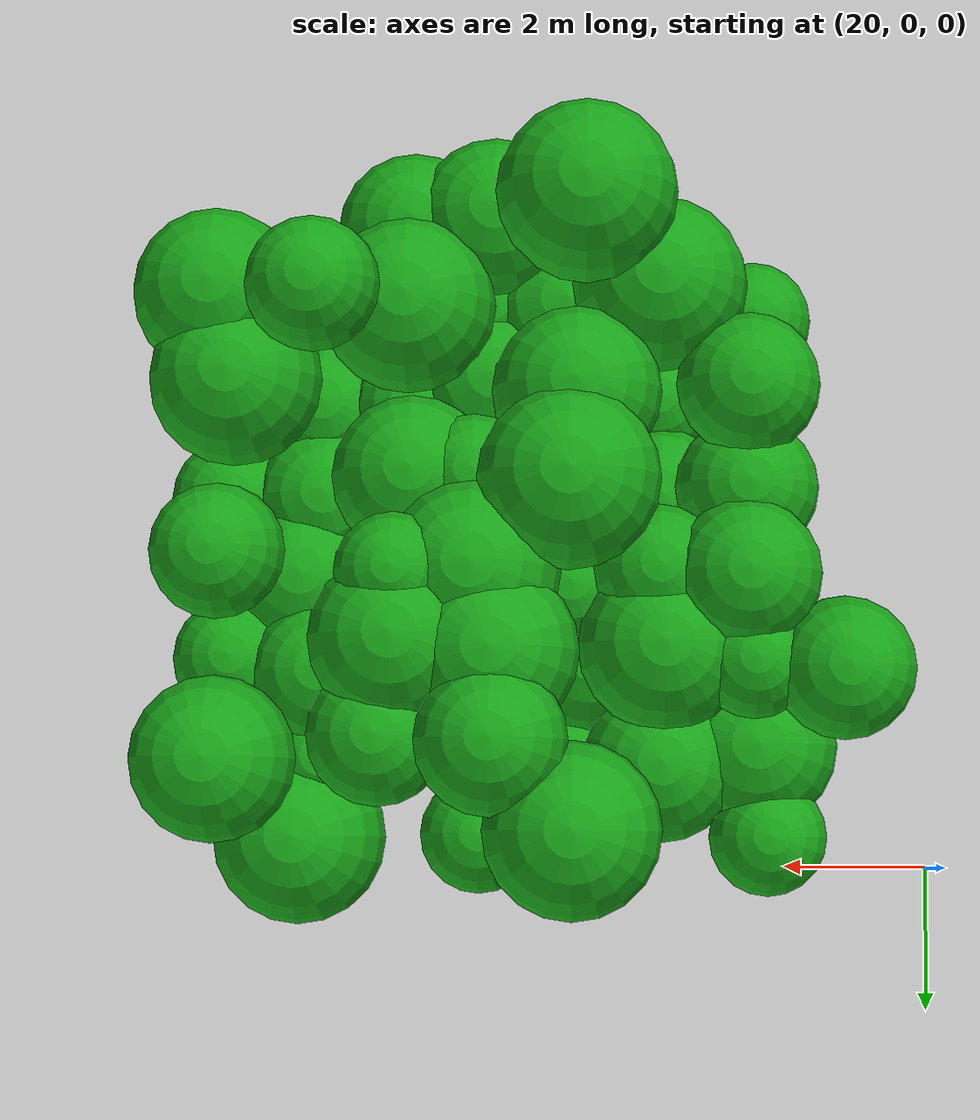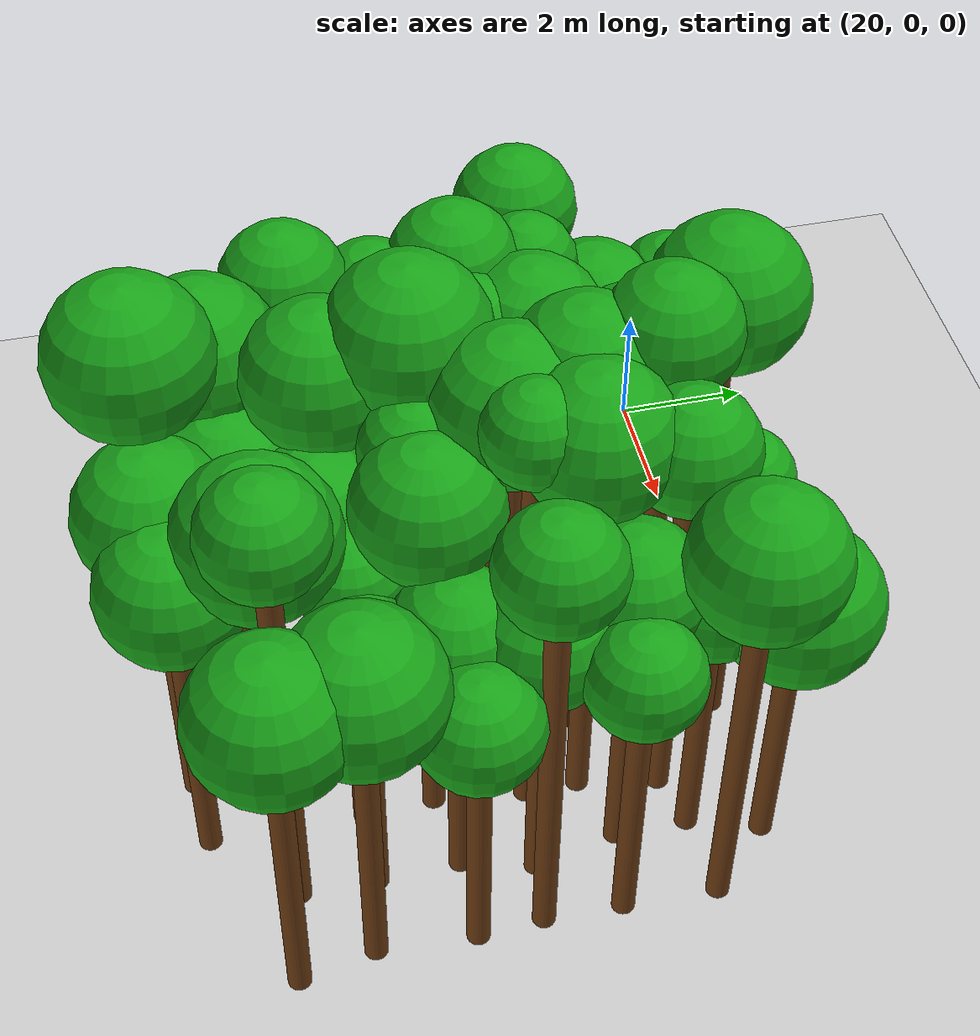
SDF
<sdf version="1.6">
 <world name="forest_world">
  <include><uri>model://sun</uri></include>
  <include><uri>model://ground_plane</uri></include>
  <model name="tree_2587_trunk">
   <static>true</static>
   <pose>21.79 -2.41 2.79 0 0 0</pose>
   <link name="link">
    <collision name="collision">
     <geometry><cylinder><radius>0.16</radius><length>5.58</length></cylinder></geometry>
    </collision>
    <visual name="visual">
     <geometry><cylinder><radius>0.16</radius><length>5.58</length></cylinder></geometry>
     <material><ambient>0.35 0.20 0.05 1</ambient><diffuse>0.45 0.25 0.08 1</diffuse></material>
    </visual>
   </link>
  </model>
  <model name="tree_2587_leaf">
   <static>true</static>
   <pose>21.79 -2.41 6.10 0 0 0</pose>
   <link name="link">
    <collision name="collision"><geometry><sphere><radius>0.87</radius></sphere></geometry></collision>
    <visual name="visual">
     <geometry><sphere><radius>0.87</radius></sphere></geometry>
     <material><ambient>0.05 0.45 0.05 1</ambient><diffuse>0.10 0.65 0.10 1</diffuse></material>
    </visual>
   </link>
  </model>
  <model name="tree_2638_trunk">
   <static>true</static>
   <pose>22.83 -6.87 2.23 0 0 0</pose>
   <link name="link">
    <collision name="collision">
     <geometry><cylinder><radius>0.16</radius><length>4.46</length></cylinder></geometry>
    </collision>
    <visual name="visual">
     <geometry><cylinder><radius>0.16</radius><length>4.46</length></cylinder></geometry>
     <material><ambient>0.35 0.20 0.05 1</ambient><diffuse>0.45 0.25 0.08 1</diffuse></material>
    </visual>
   </link>
  </model>
  <model name="tree_2638_leaf">
   <static>true</static>
   <pose>22.83 -6.87 4.90 0 0 0</pose>
   <link name="link">
    <collision name="collision"><geometry><sphere><radius>0.74</radius></sphere></geometry></collision>
    <visual name="visual">
     <geometry><sphere><radius>0.74</radius></sphere></geometry>
     <material><ambient>0.05 0.45 0.05 1</ambient><diffuse>0.10 0.65 0.10 1</diffuse></material>
    </visual>
   </link>
  </model>
  <model name="tree_2639_trunk">
   <static>true</static>
   <pose>22.97 -5.81 2.90 0 0 0</pose>
   <link name="link">
    <collision name="collision">
     <geometry><cylinder><radius>0.16</radius><length>5.80</length></cylinder></geometry>
    </collision>
    <visual name="visual">
     <geometry><cylinder><radius>0.16</radius><length>5.80</length></cylinder></geometry>
     <material><ambient>0.35 0.20 0.05 1</ambient><diffuse>0.45 0.25 0.08 1</diffuse></material>
    </visual>
   </link>
  </model>
  <model name="tree_2639_leaf">
   <static>true</static>
   <pose>22.97 -5.81 6.32 0 0 0</pose>
   <link name="link">
    <collision name="collision"><geometry><sphere><radius>0.87</radius></sphere></geometry></collision>
    <visual name="visual">
     <geometry><sphere><radius>0.87</radius></sphere></geometry>
     <material><ambient>0.05 0.45 0.05 1</ambient><diffuse>0.10 0.65 0.10 1</diffuse></material>
    </visual>
   </link>
  </model>
  <model name="tree_2640_trunk">
   <static>true</static>
   <pose>22.95 -4.63 2.63 0 0 0</pose>
   <link name="link">
    <collision name="collision">
     <geometry><cylinder><radius>0.16</radius><length>5.26</length></cylinder></geometry>
    </collision>
    <visual name="visual">
     <geometry><cylinder><radius>0.16</radius><length>5.26</length></cylinder></geometry>
     <material><ambient>0.35 0.20 0.05 1</ambient><diffuse>0.45 0.25 0.08 1</diffuse></material>
    </visual>
   </link>
  </model>
  <model name="tree_2640_leaf">
   <static>true</static>
   <pose>22.95 -4.63 5.78 0 0 0</pose>
   <link name="link">
    <collision name="collision"><geometry><sphere><radius>0.88</radius></sphere></geometry></collision>
    <visual name="visual">
     <geometry><sphere><radius>0.88</radius></sphere></geometry>
     <material><ambient>0.05 0.45 0.05 1</ambient><diffuse>0.10 0.65 0.10 1</diffuse></material>
    </visual>
   </link>
  </model>
  <model name="tree_2641_trunk">
   <static>true</static>
   <pose>22.98 -3.53 2.85 0 0 0</pose>
   <link name="link">
    <collision name="collision">
     <geometry><cylinder><radius>0.16</radius><length>5.70</length></cylinder></geometry>
    </collision>
    <visual name="visual">
     <geometry><cylinder><radius>0.16</radius><length>5.70</length></cylinder></geometry>
     <material><ambient>0.35 0.20 0.05 1</ambient><diffuse>0.45 0.25 0.08 1</diffuse></material>
    </visual>
   </link>
  </model>
  <model name="tree_2641_leaf">
   <static>true</static>
   <pose>22.98 -3.53 6.25 0 0 0</pose>
   <link name="link">
    <collision name="collision"><geometry><sphere><radius>0.91</radius></sphere></geometry></collision>
    <visual name="visual">
     <geometry><sphere><radius>0.91</radius></sphere></geometry>
     <material><ambient>0.05 0.45 0.05 1</ambient><diffuse>0.10 0.65 0.10 1</diffuse></material>
    </visual>
   </link>
  </model>
  <model name="tree_2642_trunk">
   <static>true</static>
   <pose>22.87 -2.51 2.78 0 0 0</pose>
   <link name="link">
    <collision name="collision">
     <geometry><cylinder><radius>0.16</radius><length>5.56</length></cylinder></geometry>
    </collision>
    <visual name="visual">
     <geometry><cylinder><radius>0.16</radius><length>5.56</length></cylinder></geometry>
     <material><ambient>0.35 0.20 0.05 1</ambient><diffuse>0.45 0.25 0.08 1</diffuse></material>
    </visual>
   </link>
  </model>
  <model name="tree_2642_leaf">
   <static>true</static>
   <pose>22.87 -2.51 6.00 0 0 0</pose>
   <link name="link">
    <collision name="collision"><geometry><sphere><radius>0.72</radius></sphere></geometry></collision>
    <visual name="visual">
     <geometry><sphere><radius>0.72</radius></sphere></geometry>
     <material><ambient>0.05 0.45 0.05 1</ambient><diffuse>0.10 0.65 0.10 1</diffuse></material>
    </visual>
   </link>
  </model>
  <model name="tree_2643_trunk">
   <static>true</static>
   <pose>22.81 -1.51 2.13 0 0 0</pose>
   <link name="link">
    <collision name="collision">
     <geometry><cylinder><radius>0.16</radius><length>4.26</length></cylinder></geometry>
    </collision>
    <visual name="visual">
     <geometry><cylinder><radius>0.16</radius><length>4.26</length></cylinder></geometry>
     <material><ambient>0.35 0.20 0.05 1</ambient><diffuse>0.45 0.25 0.08 1</diffuse></material>
    </visual>
   </link>
  </model>
  <model name="tree_2643_leaf">
   <static>true</static>
   <pose>22.81 -1.51 4.89 0 0 0</pose>
   <link name="link">
    <collision name="collision"><geometry><sphere><radius>1.05</radius></sphere></geometry></collision>
    <visual name="visual">
     <geometry><sphere><radius>1.05</radius></sphere></geometry>
     <material><ambient>0.05 0.45 0.05 1</ambient><diffuse>0.10 0.65 0.10 1</diffuse></material>
    </visual>
   </link>
  </model>
  <model name="tree_2644_trunk">
   <static>true</static>
   <pose>22.64 -0.38 2.32 0 0 0</pose>
   <link name="link">
    <collision name="collision">
     <geometry><cylinder><radius>0.16</radius><length>4.64</length></cylinder></geometry>
    </collision>
    <visual name="visual">
     <geometry><cylinder><radius>0.16</radius><length>4.64</length></cylinder></geometry>
     <material><ambient>0.35 0.20 0.05 1</ambient><diffuse>0.45 0.25 0.08 1</diffuse></material>
    </visual>
   </link>
  </model>
  <model name="tree_2644_leaf">
   <static>true</static>
   <pose>22.64 -0.38 5.08 0 0 0</pose>
   <link name="link">
    <collision name="collision"><geometry><sphere><radius>0.73</radius></sphere></geometry></collision>
    <visual name="visual">
     <geometry><sphere><radius>0.73</radius></sphere></geometry>
     <material><ambient>0.05 0.45 0.05 1</ambient><diffuse>0.10 0.65 0.10 1</diffuse></material>
    </visual>
   </link>
  </model>
  <model name="tree_2693_trunk">
   <static>true</static>
   <pose>24.04 -7.03 2.83 0 0 0</pose>
   <link name="link">
    <collision name="collision">
     <geometry><cylinder><radius>0.16</radius><length>5.66</length></cylinder></geometry>
    </collision>
    <visual name="visual">
     <geometry><cylinder><radius>0.16</radius><length>5.66</length></cylinder></geometry>
     <material><ambient>0.35 0.20 0.05 1</ambient><diffuse>0.45 0.25 0.08 1</diffuse></material>
    </visual>
   </link>
  </model>
  <model name="tree_2693_leaf">
   <static>true</static>
   <pose>24.04 -7.03 6.29 0 0 0</pose>
   <link name="link">
    <collision name="collision"><geometry><sphere><radius>1.06</radius></sphere></geometry></collision>
    <visual name="visual">
     <geometry><sphere><radius>1.06</radius></sphere></geometry>
     <material><ambient>0.05 0.45 0.05 1</ambient><diffuse>0.10 0.65 0.10 1</diffuse></material>
    </visual>
   </link>
  </model>
  <model name="tree_2694_trunk">
   <static>true</static>
   <pose>24.00 -5.86 2.07 0 0 0</pose>
   <link name="link">
    <collision name="collision">
     <geometry><cylinder><radius>0.16</radius><length>4.14</length></cylinder></geometry>
    </collision>
    <visual name="visual">
     <geometry><cylinder><radius>0.16</radius><length>4.14</length></cylinder></geometry>
     <material><ambient>0.35 0.20 0.05 1</ambient><diffuse>0.45 0.25 0.08 1</diffuse></material>
    </visual>
   </link>
  </model>
  <model name="tree_2694_leaf">
   <static>true</static>
   <pose>24.00 -5.86 4.59 0 0 0</pose>
   <link name="link">
    <collision name="collision"><geometry><sphere><radius>0.75</radius></sphere></geometry></collision>
    <visual name="visual">
     <geometry><sphere><radius>0.75</radius></sphere></geometry>
     <material><ambient>0.05 0.45 0.05 1</ambient><diffuse>0.10 0.65 0.10 1</diffuse></material>
    </visual>
   </link>
  </model>
  <model name="tree_2695_trunk">
   <static>true</static>
   <pose>23.97 -4.56 2.12 0 0 0</pose>
   <link name="link">
    <collision name="collision">
     <geometry><cylinder><radius>0.16</radius><length>4.24</length></cylinder></geometry>
    </collision>
    <visual name="visual">
     <geometry><cylinder><radius>0.16</radius><length>4.24</length></cylinder></geometry>
     <material><ambient>0.35 0.20 0.05 1</ambient><diffuse>0.45 0.25 0.08 1</diffuse></material>
    </visual>
   </link>
  </model>
  <model name="tree_2695_leaf">
   <static>true</static>
   <pose>23.97 -4.56 4.81 0 0 0</pose>
   <link name="link">
    <collision name="collision"><geometry><sphere><radius>0.95</radius></sphere></geometry></collision>
    <visual name="visual">
     <geometry><sphere><radius>0.95</radius></sphere></geometry>
     <material><ambient>0.05 0.45 0.05 1</ambient><diffuse>0.10 0.65 0.10 1</diffuse></material>
    </visual>
   </link>
  </model>
  <model name="tree_2696_trunk">
   <static>true</static>
   <pose>24.03 -3.60 2.77 0 0 0</pose>
   <link name="link">
    <collision name="collision">
     <geometry><cylinder><radius>0.16</radius><length>5.54</length></cylinder></geometry>
    </collision>
    <visual name="visual">
     <geometry><cylinder><radius>0.16</radius><length>5.54</length></cylinder></geometry>
     <material><ambient>0.35 0.20 0.05 1</ambient><diffuse>0.45 0.25 0.08 1</diffuse></material>
    </visual>
   </link>
  </model>
  <model name="tree_2696_leaf">
   <static>true</static>
   <pose>24.03 -3.60 6.02 0 0 0</pose>
   <link name="link">
    <collision name="collision"><geometry><sphere><radius>0.79</radius></sphere></geometry></collision>
    <visual name="visual">
     <geometry><sphere><radius>0.79</radius></sphere></geometry>
     <material><ambient>0.05 0.45 0.05 1</ambient><diffuse>0.10 0.65 0.10 1</diffuse></material>
    </visual>
   </link>
  </model>
  <model name="tree_2697_trunk">
   <static>true</static>
   <pose>23.96 -2.68 2.59 0 0 0</pose>
   <link name="link">
    <collision name="collision">
     <geometry><cylinder><radius>0.16</radius><length>5.17</length></cylinder></geometry>
    </collision>
    <visual name="visual">
     <geometry><cylinder><radius>0.16</radius><length>5.17</length></cylinder></geometry>
     <material><ambient>0.35 0.20 0.05 1</ambient><diffuse>0.45 0.25 0.08 1</diffuse></material>
    </visual>
   </link>
  </model>
  <model name="tree_2697_leaf">
   <static>true</static>
   <pose>23.96 -2.68 5.80 0 0 0</pose>
   <link name="link">
    <collision name="collision"><geometry><sphere><radius>1.05</radius></sphere></geometry></collision>
    <visual name="visual">
     <geometry><sphere><radius>1.05</radius></sphere></geometry>
     <material><ambient>0.05 0.45 0.05 1</ambient><diffuse>0.10 0.65 0.10 1</diffuse></material>
    </visual>
   </link>
  </model>
  <model name="tree_2698_trunk">
   <static>true</static>
   <pose>23.97 -1.28 2.26 0 0 0</pose>
   <link name="link">
    <collision name="collision">
     <geometry><cylinder><radius>0.16</radius><length>4.53</length></cylinder></geometry>
    </collision>
    <visual name="visual">
     <geometry><cylinder><radius>0.16</radius><length>4.53</length></cylinder></geometry>
     <material><ambient>0.35 0.20 0.05 1</ambient><diffuse>0.45 0.25 0.08 1</diffuse></material>
    </visual>
   </link>
  </model>
  <model name="tree_2698_leaf">
   <static>true</static>
   <pose>23.97 -1.28 5.11 0 0 0</pose>
   <link name="link">
    <collision name="collision"><geometry><sphere><radius>0.98</radius></sphere></geometry></collision>
    <visual name="visual">
     <geometry><sphere><radius>0.98</radius></sphere></geometry>
     <material><ambient>0.05 0.45 0.05 1</ambient><diffuse>0.10 0.65 0.10 1</diffuse></material>
    </visual>
   </link>
  </model>
  <model name="tree_2747_trunk">
   <static>true</static>
   <pose>24.94 -7.94 3.28 0 0 0</pose>
   <link name="link">
    <collision name="collision">
     <geometry><cylinder><radius>0.16</radius><length>6.57</length></cylinder></geometry>
    </collision>
    <visual name="visual">
     <geometry><cylinder><radius>0.16</radius><length>6.57</length></cylinder></geometry>
     <material><ambient>0.35 0.20 0.05 1</ambient><diffuse>0.45 0.25 0.08 1</diffuse></material>
    </visual>
   </link>
  </model>
  <model name="tree_2747_leaf">
   <static>true</static>
   <pose>24.94 -7.94 7.22 0 0 0</pose>
   <link name="link">
    <collision name="collision"><geometry><sphere><radius>1.08</radius></sphere></geometry></collision>
    <visual name="visual">
     <geometry><sphere><radius>1.08</radius></sphere></geometry>
     <material><ambient>0.05 0.45 0.05 1</ambient><diffuse>0.10 0.65 0.10 1</diffuse></material>
    </visual>
   </link>
  </model>
  <model name="tree_2748_trunk">
   <static>true</static>
   <pose>25.14 -6.91 2.21 0 0 0</pose>
   <link name="link">
    <collision name="collision">
     <geometry><cylinder><radius>0.16</radius><length>4.41</length></cylinder></geometry>
    </collision>
    <visual name="visual">
     <geometry><cylinder><radius>0.16</radius><length>4.41</length></cylinder></geometry>
     <material><ambient>0.35 0.20 0.05 1</ambient><diffuse>0.45 0.25 0.08 1</diffuse></material>
    </visual>
   </link>
  </model>
  <model name="tree_2748_leaf">
   <static>true</static>
   <pose>25.14 -6.91 5.07 0 0 0</pose>
   <link name="link">
    <collision name="collision"><geometry><sphere><radius>1.10</radius></sphere></geometry></collision>
    <visual name="visual">
     <geometry><sphere><radius>1.10</radius></sphere></geometry>
     <material><ambient>0.05 0.45 0.05 1</ambient><diffuse>0.10 0.65 0.10 1</diffuse></material>
    </visual>
   </link>
  </model>
  <model name="tree_2749_trunk">
   <static>true</static>
   <pose>25.04 -5.67 2.97 0 0 0</pose>
   <link name="link">
    <collision name="collision">
     <geometry><cylinder><radius>0.16</radius><length>5.95</length></cylinder></geometry>
    </collision>
    <visual name="visual">
     <geometry><cylinder><radius>0.16</radius><length>5.95</length></cylinder></geometry>
     <material><ambient>0.35 0.20 0.05 1</ambient><diffuse>0.45 0.25 0.08 1</diffuse></material>
    </visual>
   </link>
  </model>
  <model name="tree_2749_leaf">
   <static>true</static>
   <pose>25.04 -5.67 6.56 0 0 0</pose>
   <link name="link">
    <collision name="collision"><geometry><sphere><radius>1.02</radius></sphere></geometry></collision>
    <visual name="visual">
     <geometry><sphere><radius>1.02</radius></sphere></geometry>
     <material><ambient>0.05 0.45 0.05 1</ambient><diffuse>0.10 0.65 0.10 1</diffuse></material>
    </visual>
   </link>
  </model>
  <model name="tree_2750_trunk">
   <static>true</static>
   <pose>25.13 -4.55 3.21 0 0 0</pose>
   <link name="link">
    <collision name="collision">
     <geometry><cylinder><radius>0.16</radius><length>6.43</length></cylinder></geometry>
    </collision>
    <visual name="visual">
     <geometry><cylinder><radius>0.16</radius><length>6.43</length></cylinder></geometry>
     <material><ambient>0.35 0.20 0.05 1</ambient><diffuse>0.45 0.25 0.08 1</diffuse></material>
    </visual>
   </link>
  </model>
  <model name="tree_2750_leaf">
   <static>true</static>
   <pose>25.13 -4.55 7.08 0 0 0</pose>
   <link name="link">
    <collision name="collision"><geometry><sphere><radius>1.09</radius></sphere></geometry></collision>
    <visual name="visual">
     <geometry><sphere><radius>1.09</radius></sphere></geometry>
     <material><ambient>0.05 0.45 0.05 1</ambient><diffuse>0.10 0.65 0.10 1</diffuse></material>
    </visual>
   </link>
  </model>
  <model name="tree_2751_trunk">
   <static>true</static>
   <pose>25.08 -3.46 2.37 0 0 0</pose>
   <link name="link">
    <collision name="collision">
     <geometry><cylinder><radius>0.16</radius><length>4.75</length></cylinder></geometry>
    </collision>
    <visual name="visual">
     <geometry><cylinder><radius>0.16</radius><length>4.75</length></cylinder></geometry>
     <material><ambient>0.35 0.20 0.05 1</ambient><diffuse>0.45 0.25 0.08 1</diffuse></material>
    </visual>
   </link>
  </model>
  <model name="tree_2751_leaf">
   <static>true</static>
   <pose>25.08 -3.46 5.22 0 0 0</pose>
   <link name="link">
    <collision name="collision"><geometry><sphere><radius>0.79</radius></sphere></geometry></collision>
    <visual name="visual">
     <geometry><sphere><radius>0.79</radius></sphere></geometry>
     <material><ambient>0.05 0.45 0.05 1</ambient><diffuse>0.10 0.65 0.10 1</diffuse></material>
    </visual>
   </link>
  </model>
  <model name="tree_2752_trunk">
   <static>true</static>
   <pose>24.85 -2.58 2.07 0 0 0</pose>
   <link name="link">
    <collision name="collision">
     <geometry><cylinder><radius>0.16</radius><length>4.14</length></cylinder></geometry>
    </collision>
    <visual name="visual">
     <geometry><cylinder><radius>0.16</radius><length>4.14</length></cylinder></geometry>
     <material><ambient>0.35 0.20 0.05 1</ambient><diffuse>0.45 0.25 0.08 1</diffuse></material>
    </visual>
   </link>
  </model>
  <model name="tree_2752_leaf">
   <static>true</static>
   <pose>24.85 -2.58 4.74 0 0 0</pose>
   <link name="link">
    <collision name="collision"><geometry><sphere><radius>1.00</radius></sphere></geometry></collision>
    <visual name="visual">
     <geometry><sphere><radius>1.00</radius></sphere></geometry>
     <material><ambient>0.05 0.45 0.05 1</ambient><diffuse>0.10 0.65 0.10 1</diffuse></material>
    </visual>
   </link>
  </model>
  <model name="tree_2753_trunk">
   <static>true</static>
   <pose>25.11 -1.25 2.10 0 0 0</pose>
   <link name="link">
    <collision name="collision">
     <geometry><cylinder><radius>0.16</radius><length>4.20</length></cylinder></geometry>
    </collision>
    <visual name="visual">
     <geometry><cylinder><radius>0.16</radius><length>4.20</length></cylinder></geometry>
     <material><ambient>0.35 0.20 0.05 1</ambient><diffuse>0.45 0.25 0.08 1</diffuse></material>
    </visual>
   </link>
  </model>
  <model name="tree_2753_leaf">
   <static>true</static>
   <pose>25.11 -1.25 4.64 0 0 0</pose>
   <link name="link">
    <collision name="collision"><geometry><sphere><radius>0.73</radius></sphere></geometry></collision>
    <visual name="visual">
     <geometry><sphere><radius>0.73</radius></sphere></geometry>
     <material><ambient>0.05 0.45 0.05 1</ambient><diffuse>0.10 0.65 0.10 1</diffuse></material>
    </visual>
   </link>
  </model>
  <model name="tree_2754_trunk">
   <static>true</static>
   <pose>25.07 -0.42 3.15 0 0 0</pose>
   <link name="link">
    <collision name="collision">
     <geometry><cylinder><radius>0.16</radius><length>6.29</length></cylinder></geometry>
    </collision>
    <visual name="visual">
     <geometry><cylinder><radius>0.16</radius><length>6.29</length></cylinder></geometry>
     <material><ambient>0.35 0.20 0.05 1</ambient><diffuse>0.45 0.25 0.08 1</diffuse></material>
    </visual>
   </link>
  </model>
  <model name="tree_2754_leaf">
   <static>true</static>
   <pose>25.07 -0.42 6.93 0 0 0</pose>
   <link name="link">
    <collision name="collision"><geometry><sphere><radius>1.06</radius></sphere></geometry></collision>
    <visual name="visual">
     <geometry><sphere><radius>1.06</radius></sphere></geometry>
     <material><ambient>0.05 0.45 0.05 1</ambient><diffuse>0.10 0.65 0.10 1</diffuse></material>
    </visual>
   </link>
  </model>
  <model name="tree_2802_trunk">
   <static>true</static>
   <pose>26.04 -7.96 2.49 0 0 0</pose>
   <link name="link">
    <collision name="collision">
     <geometry><cylinder><radius>0.16</radius><length>4.99</length></cylinder></geometry>
    </collision>
    <visual name="visual">
     <geometry><cylinder><radius>0.16</radius><length>4.99</length></cylinder></geometry>
     <material><ambient>0.35 0.20 0.05 1</ambient><diffuse>0.45 0.25 0.08 1</diffuse></material>
    </visual>
   </link>
  </model>
  <model name="tree_2802_leaf">
   <static>true</static>
   <pose>26.04 -7.96 5.60 0 0 0</pose>
   <link name="link">
    <collision name="collision"><geometry><sphere><radius>1.02</radius></sphere></geometry></collision>
    <visual name="visual">
     <geometry><sphere><radius>1.02</radius></sphere></geometry>
     <material><ambient>0.05 0.45 0.05 1</ambient><diffuse>0.10 0.65 0.10 1</diffuse></material>
    </visual>
   </link>
  </model>
  <model name="tree_2803_trunk">
   <static>true</static>
   <pose>26.14 -6.94 2.18 0 0 0</pose>
   <link name="link">
    <collision name="collision">
     <geometry><cylinder><radius>0.16</radius><length>4.36</length></cylinder></geometry>
    </collision>
    <visual name="visual">
     <geometry><cylinder><radius>0.16</radius><length>4.36</length></cylinder></geometry>
     <material><ambient>0.35 0.20 0.05 1</ambient><diffuse>0.45 0.25 0.08 1</diffuse></material>
    </visual>
   </link>
  </model>
  <model name="tree_2803_leaf">
   <static>true</static>
   <pose>26.14 -6.94 4.93 0 0 0</pose>
   <link name="link">
    <collision name="collision"><geometry><sphere><radius>0.96</radius></sphere></geometry></collision>
    <visual name="visual">
     <geometry><sphere><radius>0.96</radius></sphere></geometry>
     <material><ambient>0.05 0.45 0.05 1</ambient><diffuse>0.10 0.65 0.10 1</diffuse></material>
    </visual>
   </link>
  </model>
  <model name="tree_2804_trunk">
   <static>true</static>
   <pose>26.07 -5.97 2.29 0 0 0</pose>
   <link name="link">
    <collision name="collision">
     <geometry><cylinder><radius>0.16</radius><length>4.57</length></cylinder></geometry>
    </collision>
    <visual name="visual">
     <geometry><cylinder><radius>0.16</radius><length>4.57</length></cylinder></geometry>
     <material><ambient>0.35 0.20 0.05 1</ambient><diffuse>0.45 0.25 0.08 1</diffuse></material>
    </visual>
   </link>
  </model>
  <model name="tree_2804_leaf">
   <static>true</static>
   <pose>26.07 -5.97 5.16 0 0 0</pose>
   <link name="link">
    <collision name="collision"><geometry><sphere><radius>0.98</radius></sphere></geometry></collision>
    <visual name="visual">
     <geometry><sphere><radius>0.98</radius></sphere></geometry>
     <material><ambient>0.05 0.45 0.05 1</ambient><diffuse>0.10 0.65 0.10 1</diffuse></material>
    </visual>
   </link>
  </model>
  <model name="tree_2805_trunk">
   <static>true</static>
   <pose>26.27 -4.69 2.89 0 0 0</pose>
   <link name="link">
    <collision name="collision">
     <geometry><cylinder><radius>0.16</radius><length>5.79</length></cylinder></geometry>
    </collision>
    <visual name="visual">
     <geometry><cylinder><radius>0.16</radius><length>5.79</length></cylinder></geometry>
     <material><ambient>0.35 0.20 0.05 1</ambient><diffuse>0.45 0.25 0.08 1</diffuse></material>
    </visual>
   </link>
  </model>
  <model name="tree_2805_leaf">
   <static>true</static>
   <pose>26.27 -4.69 6.23 0 0 0</pose>
   <link name="link">
    <collision name="collision"><geometry><sphere><radius>0.75</radius></sphere></geometry></collision>
    <visual name="visual">
     <geometry><sphere><radius>0.75</radius></sphere></geometry>
     <material><ambient>0.05 0.45 0.05 1</ambient><diffuse>0.10 0.65 0.10 1</diffuse></material>
    </visual>
   </link>
  </model>
  <model name="tree_2806_trunk">
   <static>true</static>
   <pose>26.27 -3.50 3.06 0 0 0</pose>
   <link name="link">
    <collision name="collision">
     <geometry><cylinder><radius>0.16</radius><length>6.12</length></cylinder></geometry>
    </collision>
    <visual name="visual">
     <geometry><cylinder><radius>0.16</radius><length>6.12</length></cylinder></geometry>
     <material><ambient>0.35 0.20 0.05 1</ambient><diffuse>0.45 0.25 0.08 1</diffuse></material>
    </visual>
   </link>
  </model>
  <model name="tree_2806_leaf">
   <static>true</static>
   <pose>26.27 -3.50 6.75 0 0 0</pose>
   <link name="link">
    <collision name="collision"><geometry><sphere><radius>1.06</radius></sphere></geometry></collision>
    <visual name="visual">
     <geometry><sphere><radius>1.06</radius></sphere></geometry>
     <material><ambient>0.05 0.45 0.05 1</ambient><diffuse>0.10 0.65 0.10 1</diffuse></material>
    </visual>
   </link>
  </model>
  <model name="tree_2807_trunk">
   <static>true</static>
   <pose>26.04 -2.52 3.13 0 0 0</pose>
   <link name="link">
    <collision name="collision">
     <geometry><cylinder><radius>0.16</radius><length>6.25</length></cylinder></geometry>
    </collision>
    <visual name="visual">
     <geometry><cylinder><radius>0.16</radius><length>6.25</length></cylinder></geometry>
     <material><ambient>0.35 0.20 0.05 1</ambient><diffuse>0.45 0.25 0.08 1</diffuse></material>
    </visual>
   </link>
  </model>
  <model name="tree_2807_leaf">
   <static>true</static>
   <pose>26.04 -2.52 6.88 0 0 0</pose>
   <link name="link">
    <collision name="collision"><geometry><sphere><radius>1.05</radius></sphere></geometry></collision>
    <visual name="visual">
     <geometry><sphere><radius>1.05</radius></sphere></geometry>
     <material><ambient>0.05 0.45 0.05 1</ambient><diffuse>0.10 0.65 0.10 1</diffuse></material>
    </visual>
   </link>
  </model>
  <model name="tree_2808_trunk">
   <static>true</static>
   <pose>26.02 -1.46 3.39 0 0 0</pose>
   <link name="link">
    <collision name="collision">
     <geometry><cylinder><radius>0.16</radius><length>6.79</length></cylinder></geometry>
    </collision>
    <visual name="visual">
     <geometry><cylinder><radius>0.16</radius><length>6.79</length></cylinder></geometry>
     <material><ambient>0.35 0.20 0.05 1</ambient><diffuse>0.45 0.25 0.08 1</diffuse></material>
    </visual>
   </link>
  </model>
  <model name="tree_2808_leaf">
   <static>true</static>
   <pose>26.02 -1.46 7.33 0 0 0</pose>
   <link name="link">
    <collision name="collision"><geometry><sphere><radius>0.90</radius></sphere></geometry></collision>
    <visual name="visual">
     <geometry><sphere><radius>0.90</radius></sphere></geometry>
     <material><ambient>0.05 0.45 0.05 1</ambient><diffuse>0.10 0.65 0.10 1</diffuse></material>
    </visual>
   </link>
  </model>
  <model name="tree_2809_trunk">
   <static>true</static>
   <pose>26.21 -0.40 2.13 0 0 0</pose>
   <link name="link">
    <collision name="collision">
     <geometry><cylinder><radius>0.16</radius><length>4.26</length></cylinder></geometry>
    </collision>
    <visual name="visual">
     <geometry><cylinder><radius>0.16</radius><length>4.26</length></cylinder></geometry>
     <material><ambient>0.35 0.20 0.05 1</ambient><diffuse>0.45 0.25 0.08 1</diffuse></material>
    </visual>
   </link>
  </model>
  <model name="tree_2809_leaf">
   <static>true</static>
   <pose>26.21 -0.40 4.70 0 0 0</pose>
   <link name="link">
    <collision name="collision"><geometry><sphere><radius>0.74</radius></sphere></geometry></collision>
    <visual name="visual">
     <geometry><sphere><radius>0.74</radius></sphere></geometry>
     <material><ambient>0.05 0.45 0.05 1</ambient><diffuse>0.10 0.65 0.10 1</diffuse></material>
    </visual>
   </link>
  </model>
  <model name="tree_2857_trunk">
   <static>true</static>
   <pose>27.05 -7.88 2.36 0 0 0</pose>
   <link name="link">
    <collision name="collision">
     <geometry><cylinder><radius>0.16</radius><length>4.71</length></cylinder></geometry>
    </collision>
    <visual name="visual">
     <geometry><cylinder><radius>0.16</radius><length>4.71</length></cylinder></geometry>
     <material><ambient>0.35 0.20 0.05 1</ambient><diffuse>0.45 0.25 0.08 1</diffuse></material>
    </visual>
   </link>
  </model>
  <model name="tree_2857_leaf">
   <static>true</static>
   <pose>27.05 -7.88 5.30 0 0 0</pose>
   <link name="link">
    <collision name="collision"><geometry><sphere><radius>0.98</radius></sphere></geometry></collision>
    <visual name="visual">
     <geometry><sphere><radius>0.98</radius></sphere></geometry>
     <material><ambient>0.05 0.45 0.05 1</ambient><diffuse>0.10 0.65 0.10 1</diffuse></material>
    </visual>
   </link>
  </model>
  <model name="tree_2858_trunk">
   <static>true</static>
   <pose>27.10 -6.80 2.69 0 0 0</pose>
   <link name="link">
    <collision name="collision">
     <geometry><cylinder><radius>0.16</radius><length>5.38</length></cylinder></geometry>
    </collision>
    <visual name="visual">
     <geometry><cylinder><radius>0.16</radius><length>5.38</length></cylinder></geometry>
     <material><ambient>0.35 0.20 0.05 1</ambient><diffuse>0.45 0.25 0.08 1</diffuse></material>
    </visual>
   </link>
  </model>
  <model name="tree_2858_leaf">
   <static>true</static>
   <pose>27.10 -6.80 6.03 0 0 0</pose>
   <link name="link">
    <collision name="collision"><geometry><sphere><radius>1.07</radius></sphere></geometry></collision>
    <visual name="visual">
     <geometry><sphere><radius>1.07</radius></sphere></geometry>
     <material><ambient>0.05 0.45 0.05 1</ambient><diffuse>0.10 0.65 0.10 1</diffuse></material>
    </visual>
   </link>
  </model>
  <model name="tree_2859_trunk">
   <static>true</static>
   <pose>27.08 -5.71 2.31 0 0 0</pose>
   <link name="link">
    <collision name="collision">
     <geometry><cylinder><radius>0.16</radius><length>4.61</length></cylinder></geometry>
    </collision>
    <visual name="visual">
     <geometry><cylinder><radius>0.16</radius><length>4.61</length></cylinder></geometry>
     <material><ambient>0.35 0.20 0.05 1</ambient><diffuse>0.45 0.25 0.08 1</diffuse></material>
    </visual>
   </link>
  </model>
  <model name="tree_2859_leaf">
   <static>true</static>
   <pose>27.08 -5.71 5.07 0 0 0</pose>
   <link name="link">
    <collision name="collision"><geometry><sphere><radius>0.76</radius></sphere></geometry></collision>
    <visual name="visual">
     <geometry><sphere><radius>0.76</radius></sphere></geometry>
     <material><ambient>0.05 0.45 0.05 1</ambient><diffuse>0.10 0.65 0.10 1</diffuse></material>
    </visual>
   </link>
  </model>
  <model name="tree_2860_trunk">
   <static>true</static>
   <pose>27.02 -4.71 2.70 0 0 0</pose>
   <link name="link">
    <collision name="collision">
     <geometry><cylinder><radius>0.16</radius><length>5.41</length></cylinder></geometry>
    </collision>
    <visual name="visual">
     <geometry><cylinder><radius>0.16</radius><length>5.41</length></cylinder></geometry>
     <material><ambient>0.35 0.20 0.05 1</ambient><diffuse>0.45 0.25 0.08 1</diffuse></material>
    </visual>
   </link>
  </model>
  <model name="tree_2860_leaf">
   <static>true</static>
   <pose>27.02 -4.71 6.00 0 0 0</pose>
   <link name="link">
    <collision name="collision"><geometry><sphere><radius>0.99</radius></sphere></geometry></collision>
    <visual name="visual">
     <geometry><sphere><radius>0.99</radius></sphere></geometry>
     <material><ambient>0.05 0.45 0.05 1</ambient><diffuse>0.10 0.65 0.10 1</diffuse></material>
    </visual>
   </link>
  </model>
  <model name="tree_2861_trunk">
   <static>true</static>
   <pose>27.18 -3.43 3.36 0 0 0</pose>
   <link name="link">
    <collision name="collision">
     <geometry><cylinder><radius>0.16</radius><length>6.72</length></cylinder></geometry>
    </collision>
    <visual name="visual">
     <geometry><cylinder><radius>0.16</radius><length>6.72</length></cylinder></geometry>
     <material><ambient>0.35 0.20 0.05 1</ambient><diffuse>0.45 0.25 0.08 1</diffuse></material>
    </visual>
   </link>
  </model>
  <model name="tree_2861_leaf">
   <static>true</static>
   <pose>27.18 -3.43 7.14 0 0 0</pose>
   <link name="link">
    <collision name="collision"><geometry><sphere><radius>0.70</radius></sphere></geometry></collision>
    <visual name="visual">
     <geometry><sphere><radius>0.70</radius></sphere></geometry>
     <material><ambient>0.05 0.45 0.05 1</ambient><diffuse>0.10 0.65 0.10 1</diffuse></material>
    </visual>
   </link>
  </model>
  <model name="tree_2862_trunk">
   <static>true</static>
   <pose>27.17 -2.67 3.13 0 0 0</pose>
   <link name="link">
    <collision name="collision">
     <geometry><cylinder><radius>0.16</radius><length>6.25</length></cylinder></geometry>
    </collision>
    <visual name="visual">
     <geometry><cylinder><radius>0.16</radius><length>6.25</length></cylinder></geometry>
     <material><ambient>0.35 0.20 0.05 1</ambient><diffuse>0.45 0.25 0.08 1</diffuse></material>
    </visual>
   </link>
  </model>
  <model name="tree_2862_leaf">
   <static>true</static>
   <pose>27.17 -2.67 6.87 0 0 0</pose>
   <link name="link">
    <collision name="collision"><geometry><sphere><radius>1.03</radius></sphere></geometry></collision>
    <visual name="visual">
     <geometry><sphere><radius>1.03</radius></sphere></geometry>
     <material><ambient>0.05 0.45 0.05 1</ambient><diffuse>0.10 0.65 0.10 1</diffuse></material>
    </visual>
   </link>
  </model>
  <model name="tree_2863_trunk">
   <static>true</static>
   <pose>27.37 -1.54 3.06 0 0 0</pose>
   <link name="link">
    <collision name="collision">
     <geometry><cylinder><radius>0.16</radius><length>6.13</length></cylinder></geometry>
    </collision>
    <visual name="visual">
     <geometry><cylinder><radius>0.16</radius><length>6.13</length></cylinder></geometry>
     <material><ambient>0.35 0.20 0.05 1</ambient><diffuse>0.45 0.25 0.08 1</diffuse></material>
    </visual>
   </link>
  </model>
  <model name="tree_2863_leaf">
   <static>true</static>
   <pose>27.37 -1.54 6.64 0 0 0</pose>
   <link name="link">
    <collision name="collision"><geometry><sphere><radius>0.85</radius></sphere></geometry></collision>
    <visual name="visual">
     <geometry><sphere><radius>0.85</radius></sphere></geometry>
     <material><ambient>0.05 0.45 0.05 1</ambient><diffuse>0.10 0.65 0.10 1</diffuse></material>
    </visual>
   </link>
  </model>
  <model name="tree_2913_trunk">
   <static>true</static>
   <pose>28.17 -6.81 3.37 0 0 0</pose>
   <link name="link">
    <collision name="collision">
     <geometry><cylinder><radius>0.16</radius><length>6.73</length></cylinder></geometry>
    </collision>
    <visual name="visual">
     <geometry><cylinder><radius>0.16</radius><length>6.73</length></cylinder></geometry>
     <material><ambient>0.35 0.20 0.05 1</ambient><diffuse>0.45 0.25 0.08 1</diffuse></material>
    </visual>
   </link>
  </model>
  <model name="tree_2913_leaf">
   <static>true</static>
   <pose>28.17 -6.81 7.22 0 0 0</pose>
   <link name="link">
    <collision name="collision"><geometry><sphere><radius>0.80</radius></sphere></geometry></collision>
    <visual name="visual">
     <geometry><sphere><radius>0.80</radius></sphere></geometry>
     <material><ambient>0.05 0.45 0.05 1</ambient><diffuse>0.10 0.65 0.10 1</diffuse></material>
    </visual>
   </link>
  </model>
  <model name="tree_2914_trunk">
   <static>true</static>
   <pose>28.18 -5.74 2.13 0 0 0</pose>
   <link name="link">
    <collision name="collision">
     <geometry><cylinder><radius>0.16</radius><length>4.25</length></cylinder></geometry>
    </collision>
    <visual name="visual">
     <geometry><cylinder><radius>0.16</radius><length>4.25</length></cylinder></geometry>
     <material><ambient>0.35 0.20 0.05 1</ambient><diffuse>0.45 0.25 0.08 1</diffuse></material>
    </visual>
   </link>
  </model>
  <model name="tree_2914_leaf">
   <static>true</static>
   <pose>28.18 -5.74 4.75 0 0 0</pose>
   <link name="link">
    <collision name="collision"><geometry><sphere><radius>0.83</radius></sphere></geometry></collision>
    <visual name="visual">
     <geometry><sphere><radius>0.83</radius></sphere></geometry>
     <material><ambient>0.05 0.45 0.05 1</ambient><diffuse>0.10 0.65 0.10 1</diffuse></material>
    </visual>
   </link>
  </model>
  <model name="tree_2915_trunk">
   <static>true</static>
   <pose>28.13 -4.57 2.14 0 0 0</pose>
   <link name="link">
    <collision name="collision">
     <geometry><cylinder><radius>0.16</radius><length>4.29</length></cylinder></geometry>
    </collision>
    <visual name="visual">
     <geometry><cylinder><radius>0.16</radius><length>4.29</length></cylinder></geometry>
     <material><ambient>0.35 0.20 0.05 1</ambient><diffuse>0.45 0.25 0.08 1</diffuse></material>
    </visual>
   </link>
  </model>
  <model name="tree_2915_leaf">
   <static>true</static>
   <pose>28.13 -4.57 4.84 0 0 0</pose>
   <link name="link">
    <collision name="collision"><geometry><sphere><radius>0.92</radius></sphere></geometry></collision>
    <visual name="visual">
     <geometry><sphere><radius>0.92</radius></sphere></geometry>
     <material><ambient>0.05 0.45 0.05 1</ambient><diffuse>0.10 0.65 0.10 1</diffuse></material>
    </visual>
   </link>
  </model>
  <model name="tree_2916_trunk">
   <static>true</static>
   <pose>28.40 -3.57 2.17 0 0 0</pose>
   <link name="link">
    <collision name="collision">
     <geometry><cylinder><radius>0.16</radius><length>4.35</length></cylinder></geometry>
    </collision>
    <visual name="visual">
     <geometry><cylinder><radius>0.16</radius><length>4.35</length></cylinder></geometry>
     <material><ambient>0.35 0.20 0.05 1</ambient><diffuse>0.45 0.25 0.08 1</diffuse></material>
    </visual>
   </link>
  </model>
  <model name="tree_2916_leaf">
   <static>true</static>
   <pose>28.40 -3.57 4.91 0 0 0</pose>
   <link name="link">
    <collision name="collision"><geometry><sphere><radius>0.94</radius></sphere></geometry></collision>
    <visual name="visual">
     <geometry><sphere><radius>0.94</radius></sphere></geometry>
     <material><ambient>0.05 0.45 0.05 1</ambient><diffuse>0.10 0.65 0.10 1</diffuse></material>
    </visual>
   </link>
  </model>
  <model name="tree_2917_trunk">
   <static>true</static>
   <pose>28.14 -2.37 2.34 0 0 0</pose>
   <link name="link">
    <collision name="collision">
     <geometry><cylinder><radius>0.16</radius><length>4.69</length></cylinder></geometry>
    </collision>
    <visual name="visual">
     <geometry><cylinder><radius>0.16</radius><length>4.69</length></cylinder></geometry>
     <material><ambient>0.35 0.20 0.05 1</ambient><diffuse>0.45 0.25 0.08 1</diffuse></material>
    </visual>
   </link>
  </model>
  <model name="tree_2917_leaf">
   <static>true</static>
   <pose>28.14 -2.37 5.22 0 0 0</pose>
   <link name="link">
    <collision name="collision"><geometry><sphere><radius>0.90</radius></sphere></geometry></collision>
    <visual name="visual">
     <geometry><sphere><radius>0.90</radius></sphere></geometry>
     <material><ambient>0.05 0.45 0.05 1</ambient><diffuse>0.10 0.65 0.10 1</diffuse></material>
    </visual>
   </link>
  </model>
  <model name="tree_2918_trunk">
   <static>true</static>
   <pose>28.13 -1.34 2.14 0 0 0</pose>
   <link name="link">
    <collision name="collision">
     <geometry><cylinder><radius>0.16</radius><length>4.29</length></cylinder></geometry>
    </collision>
    <visual name="visual">
     <geometry><cylinder><radius>0.16</radius><length>4.29</length></cylinder></geometry>
     <material><ambient>0.35 0.20 0.05 1</ambient><diffuse>0.45 0.25 0.08 1</diffuse></material>
    </visual>
   </link>
  </model>
  <model name="tree_2918_leaf">
   <static>true</static>
   <pose>28.13 -1.34 4.79 0 0 0</pose>
   <link name="link">
    <collision name="collision"><geometry><sphere><radius>0.84</radius></sphere></geometry></collision>
    <visual name="visual">
     <geometry><sphere><radius>0.84</radius></sphere></geometry>
     <material><ambient>0.05 0.45 0.05 1</ambient><diffuse>0.10 0.65 0.10 1</diffuse></material>
    </visual>
   </link>
  </model>
  <model name="tree_2919_trunk">
   <static>true</static>
   <pose>28.45 -0.35 2.06 0 0 0</pose>
   <link name="link">
    <collision name="collision">
     <geometry><cylinder><radius>0.16</radius><length>4.13</length></cylinder></geometry>
    </collision>
    <visual name="visual">
     <geometry><cylinder><radius>0.16</radius><length>4.13</length></cylinder></geometry>
     <material><ambient>0.35 0.20 0.05 1</ambient><diffuse>0.45 0.25 0.08 1</diffuse></material>
    </visual>
   </link>
  </model>
  <model name="tree_2919_leaf">
   <static>true</static>
   <pose>28.45 -0.35 4.78 0 0 0</pose>
   <link name="link">
    <collision name="collision"><geometry><sphere><radius>1.08</radius></sphere></geometry></collision>
    <visual name="visual">
     <geometry><sphere><radius>1.08</radius></sphere></geometry>
     <material><ambient>0.05 0.45 0.05 1</ambient><diffuse>0.10 0.65 0.10 1</diffuse></material>
    </visual>
   </link>
  </model>
  <model name="tree_2968_trunk">
   <static>true</static>
   <pose>29.48 -7.03 2.49 0 0 0</pose>
   <link name="link">
    <collision name="collision">
     <geometry><cylinder><radius>0.16</radius><length>4.98</length></cylinder></geometry>
    </collision>
    <visual name="visual">
     <geometry><cylinder><radius>0.16</radius><length>4.98</length></cylinder></geometry>
     <material><ambient>0.35 0.20 0.05 1</ambient><diffuse>0.45 0.25 0.08 1</diffuse></material>
    </visual>
   </link>
  </model>
  <model name="tree_2968_leaf">
   <static>true</static>
   <pose>29.48 -7.03 5.61 0 0 0</pose>
   <link name="link">
    <collision name="collision"><geometry><sphere><radius>1.05</radius></sphere></geometry></collision>
    <visual name="visual">
     <geometry><sphere><radius>1.05</radius></sphere></geometry>
     <material><ambient>0.05 0.45 0.05 1</ambient><diffuse>0.10 0.65 0.10 1</diffuse></material>
    </visual>
   </link>
  </model>
  <model name="tree_2969_trunk">
   <static>true</static>
   <pose>29.25 -5.96 2.46 0 0 0</pose>
   <link name="link">
    <collision name="collision">
     <geometry><cylinder><radius>0.16</radius><length>4.92</length></cylinder></geometry>
    </collision>
    <visual name="visual">
     <geometry><cylinder><radius>0.16</radius><length>4.92</length></cylinder></geometry>
     <material><ambient>0.35 0.20 0.05 1</ambient><diffuse>0.45 0.25 0.08 1</diffuse></material>
    </visual>
   </link>
  </model>
  <model name="tree_2969_leaf">
   <static>true</static>
   <pose>29.25 -5.96 5.56 0 0 0</pose>
   <link name="link">
    <collision name="collision"><geometry><sphere><radius>1.07</radius></sphere></geometry></collision>
    <visual name="visual">
     <geometry><sphere><radius>1.07</radius></sphere></geometry>
     <material><ambient>0.05 0.45 0.05 1</ambient><diffuse>0.10 0.65 0.10 1</diffuse></material>
    </visual>
   </link>
  </model>
  <model name="tree_2970_trunk">
   <static>true</static>
   <pose>29.32 -4.58 2.03 0 0 0</pose>
   <link name="link">
    <collision name="collision">
     <geometry><cylinder><radius>0.16</radius><length>4.06</length></cylinder></geometry>
    </collision>
    <visual name="visual">
     <geometry><cylinder><radius>0.16</radius><length>4.06</length></cylinder></geometry>
     <material><ambient>0.35 0.20 0.05 1</ambient><diffuse>0.45 0.25 0.08 1</diffuse></material>
    </visual>
   </link>
  </model>
  <model name="tree_2970_leaf">
   <static>true</static>
   <pose>29.32 -4.58 4.57 0 0 0</pose>
   <link name="link">
    <collision name="collision"><geometry><sphere><radius>0.83</radius></sphere></geometry></collision>
    <visual name="visual">
     <geometry><sphere><radius>0.83</radius></sphere></geometry>
     <material><ambient>0.05 0.45 0.05 1</ambient><diffuse>0.10 0.65 0.10 1</diffuse></material>
    </visual>
   </link>
  </model>
  <model name="tree_2971_trunk">
   <static>true</static>
   <pose>29.25 -3.66 3.29 0 0 0</pose>
   <link name="link">
    <collision name="collision">
     <geometry><cylinder><radius>0.16</radius><length>6.59</length></cylinder></geometry>
    </collision>
    <visual name="visual">
     <geometry><cylinder><radius>0.16</radius><length>6.59</length></cylinder></geometry>
     <material><ambient>0.35 0.20 0.05 1</ambient><diffuse>0.45 0.25 0.08 1</diffuse></material>
    </visual>
   </link>
  </model>
  <model name="tree_2971_leaf">
   <static>true</static>
   <pose>29.25 -3.66 7.07 0 0 0</pose>
   <link name="link">
    <collision name="collision"><geometry><sphere><radius>0.80</radius></sphere></geometry></collision>
    <visual name="visual">
     <geometry><sphere><radius>0.80</radius></sphere></geometry>
     <material><ambient>0.05 0.45 0.05 1</ambient><diffuse>0.10 0.65 0.10 1</diffuse></material>
    </visual>
   </link>
  </model>
  <model name="tree_2972_trunk">
   <static>true</static>
   <pose>29.27 -2.56 2.21 0 0 0</pose>
   <link name="link">
    <collision name="collision">
     <geometry><cylinder><radius>0.16</radius><length>4.43</length></cylinder></geometry>
    </collision>
    <visual name="visual">
     <geometry><cylinder><radius>0.16</radius><length>4.43</length></cylinder></geometry>
     <material><ambient>0.35 0.20 0.05 1</ambient><diffuse>0.45 0.25 0.08 1</diffuse></material>
    </visual>
   </link>
  </model>
  <model name="tree_2972_leaf">
   <static>true</static>
   <pose>29.27 -2.56 4.90 0 0 0</pose>
   <link name="link">
    <collision name="collision"><geometry><sphere><radius>0.78</radius></sphere></geometry></collision>
    <visual name="visual">
     <geometry><sphere><radius>0.78</radius></sphere></geometry>
     <material><ambient>0.05 0.45 0.05 1</ambient><diffuse>0.10 0.65 0.10 1</diffuse></material>
    </visual>
   </link>
  </model>
  <model name="tree_2973_trunk">
   <static>true</static>
   <pose>29.31 -1.24 3.05 0 0 0</pose>
   <link name="link">
    <collision name="collision">
     <geometry><cylinder><radius>0.16</radius><length>6.09</length></cylinder></geometry>
    </collision>
    <visual name="visual">
     <geometry><cylinder><radius>0.16</radius><length>6.09</length></cylinder></geometry>
     <material><ambient>0.35 0.20 0.05 1</ambient><diffuse>0.45 0.25 0.08 1</diffuse></material>
    </visual>
   </link>
  </model>
  <model name="tree_2973_leaf">
   <static>true</static>
   <pose>29.31 -1.24 6.69 0 0 0</pose>
   <link name="link">
    <collision name="collision"><geometry><sphere><radius>0.99</radius></sphere></geometry></collision>
    <visual name="visual">
     <geometry><sphere><radius>0.99</radius></sphere></geometry>
     <material><ambient>0.05 0.45 0.05 1</ambient><diffuse>0.10 0.65 0.10 1</diffuse></material>
    </visual>
   </link>
  </model>
 </world>
</sdf>
